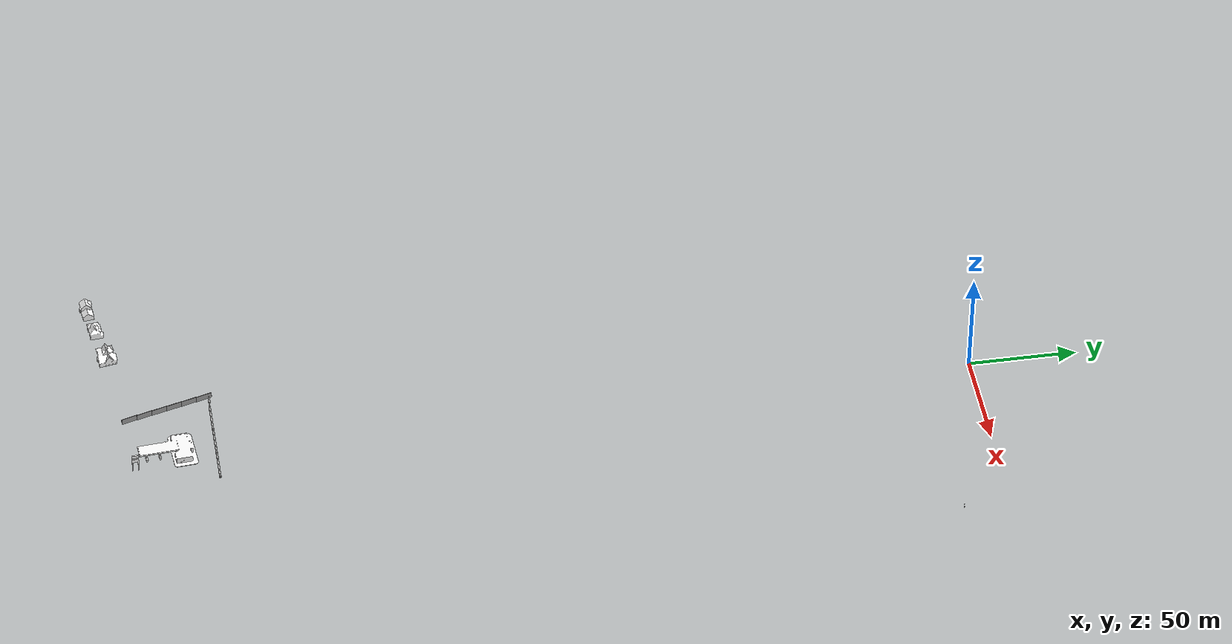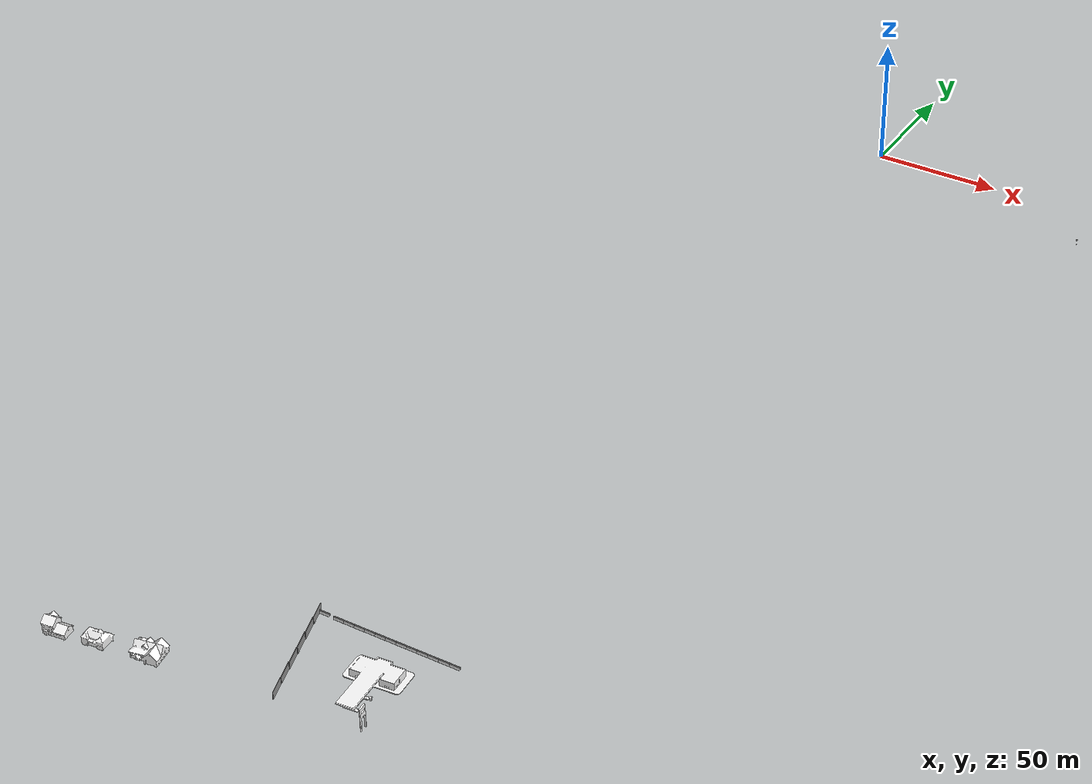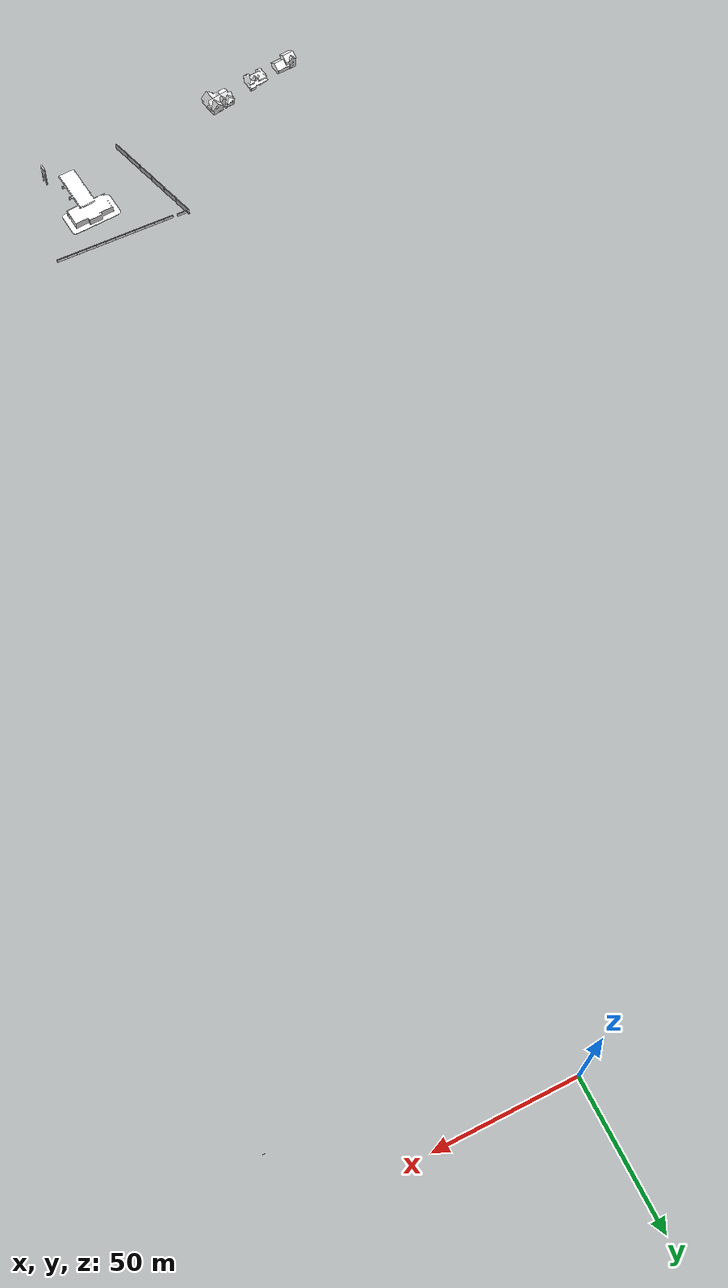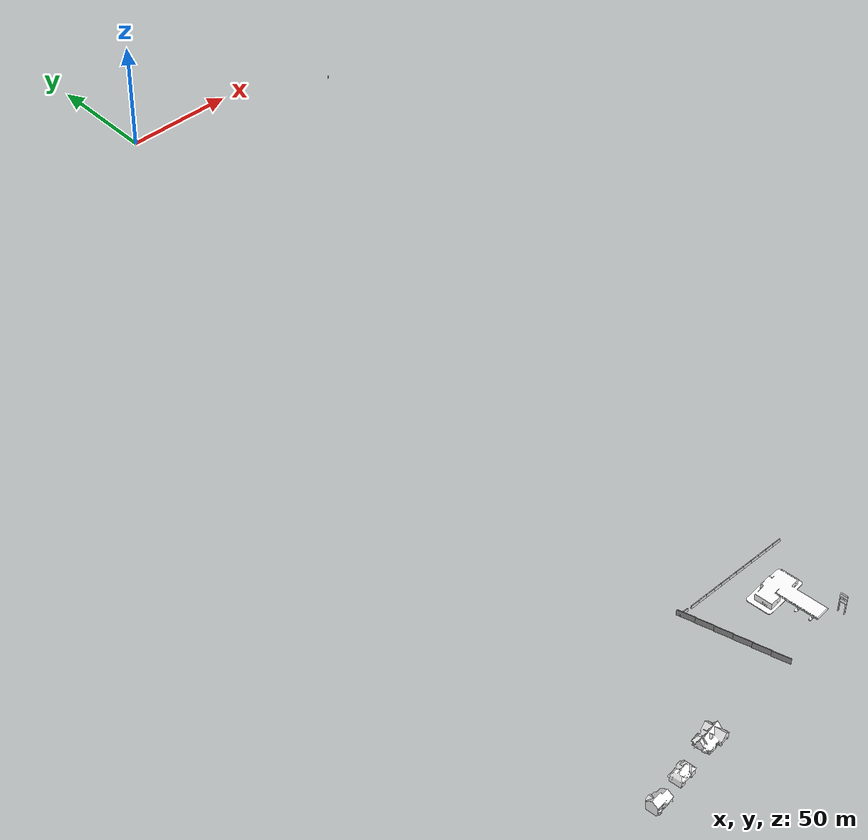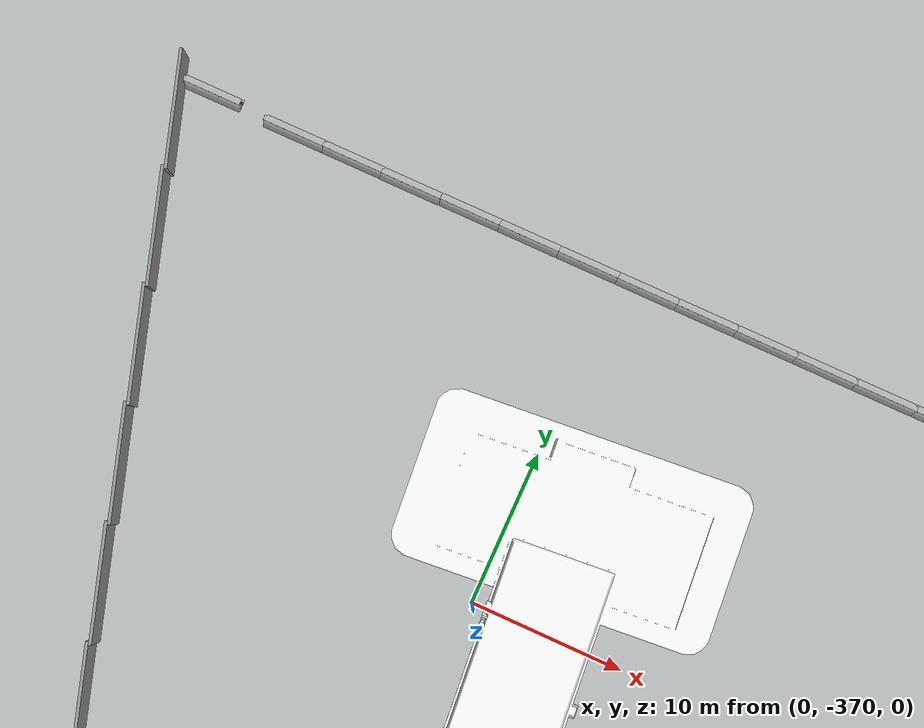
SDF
<sdf version="1.6">
 <world name="default">
  <light name="sun" type="directional">
   <pose>0 0 10 0 -0 0</pose>
   <diffuse>0.8 0.8 0.8 1</diffuse>
   <specular>0.2 0.2 0.2 1</specular>
   <attenuation>
    <range>1000</range>
    <constant>0.9</constant>
    <linear>0.01</linear>
    <quadratic>0.001</quadratic>
   </attenuation>
   <direction>-0.5 0.1 -0.9</direction>
  </light>
  <gravity>0 0 -9.8</gravity>
  <magnetic_field>6e-06 2.3e-05 -4.2e-05</magnetic_field>
  <atmosphere type="adiabatic"/>
  <physics name="default_physics" default="0" type="ode">
   <max_step_size>0.001</max_step_size>
   <real_time_factor>1</real_time_factor>
   <real_time_update_rate>1000</real_time_update_rate>
  </physics>
  <scene><ambient>0.4 0.4 0.4 1</ambient><background>0.7 0.7 0.7 1</background><shadows>1</shadows></scene>
  <audio><device>default</device></audio>
  <spherical_coordinates>
   <surface_model>EARTH_WGS84</surface_model>
   <latitude_deg>0</latitude_deg>
   <longitude_deg>0</longitude_deg>
   <elevation>0</elevation>
   <heading_deg>0</heading_deg>
  </spherical_coordinates>
  <model name="Gas Station">
   <static>1</static>
   <link name="link">
    <collision name="collision">
     <geometry><mesh><uri>model://gas_station/meshes/gas_station.dae</uri></mesh></geometry>
    </collision>
    <visual name="visual">
     <geometry><mesh><uri>model://gas_station/meshes/gas_station.dae</uri></mesh></geometry>
     <material>
      <script>
       <uri>model://gas_station/materials/scripts</uri>
       <uri>model://gas_station/materials/textures</uri>
       <name>GasStation/Diffuse</name>
      </script>
      <shader type="normal_map_object_space"><normal_map>GasStation_Normal.png</normal_map></shader>
     </material>
    </visual>
   </link>
   <pose>3.60098 -363.272 0 0 -0 0.083826</pose>
  </model>
  <model name="jersey_barrier">
   <static>1</static>
   <link name="link">
    <visual name="visual">
     <geometry><mesh><uri>model://jersey_barrier/meshes/jersey_barrier.dae</uri></mesh></geometry>
    </visual>
    <collision name="upright">
     <pose>0 0 0.5715 0 -0 0</pose>
     <geometry><box><size>4.06542 0.3063 1.143</size></box></geometry>
    </collision>
    <collision name="base">
     <pose>0 0 0.032258 0 -0 0</pose>
     <geometry><box><size>4.06542 0.8107 0.064516</size></box></geometry>
    </collision>
    <collision name="base2">
     <pose>0 0 0.1 0 -0 0</pose>
     <geometry><box><size>4.06542 0.65 0.1</size></box></geometry>
    </collision>
    <collision name="base3">
     <pose>0 0 0.2 0 -0 0</pose>
     <geometry><box><size>4.06542 0.5 0.1</size></box></geometry>
    </collision>
    <collision name="left-angle">
     <pose>0 -0.224 0.2401 0.9 -0 0</pose>
     <geometry><box><size>4.06542 0.5 0.064516</size></box></geometry>
    </collision>
    <collision name="right-angle">
     <pose>0 0.224 0.2401 -0.9 0 0</pose>
     <geometry><box><size>4.06542 0.5 0.064516</size></box></geometry>
    </collision>
   </link>
   <pose>-27.7486 -347.795 0 0 -0 0</pose>
  </model>
  <model name="jersey_barrier_clone">
   <static>1</static>
   <link name="link">
    <visual name="visual">
     <geometry><mesh><uri>model://jersey_barrier/meshes/jersey_barrier.dae</uri></mesh></geometry>
    </visual>
    <collision name="upright">
     <pose>0 0 0.5715 0 -0 0</pose>
     <geometry><box><size>4.06542 0.3063 1.143</size></box></geometry>
    </collision>
    <collision name="base">
     <pose>0 0 0.032258 0 -0 0</pose>
     <geometry><box><size>4.06542 0.8107 0.064516</size></box></geometry>
    </collision>
    <collision name="base2">
     <pose>0 0 0.1 0 -0 0</pose>
     <geometry><box><size>4.06542 0.65 0.1</size></box></geometry>
    </collision>
    <collision name="base3">
     <pose>0 0 0.2 0 -0 0</pose>
     <geometry><box><size>4.06542 0.5 0.1</size></box></geometry>
    </collision>
    <collision name="left-angle">
     <pose>0 -0.224 0.2401 0.9 -0 0</pose>
     <geometry><box><size>4.06542 0.5 0.064516</size></box></geometry>
    </collision>
    <collision name="right-angle">
     <pose>0 0.224 0.2401 -0.9 0 0</pose>
     <geometry><box><size>4.06542 0.5 0.064516</size></box></geometry>
    </collision>
   </link>
   <pose>-22 -348 0 0 -0 0</pose>
  </model>
  <model name="jersey_barrier_clone_clone">
   <static>1</static>
   <link name="link">
    <visual name="visual">
     <geometry><mesh><uri>model://jersey_barrier/meshes/jersey_barrier.dae</uri></mesh></geometry>
    </visual>
    <collision name="upright">
     <pose>0 0 0.5715 0 -0 0</pose>
     <geometry><box><size>4.06542 0.3063 1.143</size></box></geometry>
    </collision>
    <collision name="base">
     <pose>0 0 0.032258 0 -0 0</pose>
     <geometry><box><size>4.06542 0.8107 0.064516</size></box></geometry>
    </collision>
    <collision name="base2">
     <pose>0 0 0.1 0 -0 0</pose>
     <geometry><box><size>4.06542 0.65 0.1</size></box></geometry>
    </collision>
    <collision name="base3">
     <pose>0 0 0.2 0 -0 0</pose>
     <geometry><box><size>4.06542 0.5 0.1</size></box></geometry>
    </collision>
    <collision name="left-angle">
     <pose>0 -0.224 0.2401 0.9 -0 0</pose>
     <geometry><box><size>4.06542 0.5 0.064516</size></box></geometry>
    </collision>
    <collision name="right-angle">
     <pose>0 0.224 0.2401 -0.9 0 0</pose>
     <geometry><box><size>4.06542 0.5 0.064516</size></box></geometry>
    </collision>
   </link>
   <pose>-18 -348 0 0 -0 0</pose>
  </model>
  <model name="jersey_barrier_clone_clone_clone">
   <static>1</static>
   <link name="link">
    <visual name="visual">
     <geometry><mesh><uri>model://jersey_barrier/meshes/jersey_barrier.dae</uri></mesh></geometry>
    </visual>
    <collision name="upright">
     <pose>0 0 0.5715 0 -0 0</pose>
     <geometry><box><size>4.06542 0.3063 1.143</size></box></geometry>
    </collision>
    <collision name="base">
     <pose>0 0 0.032258 0 -0 0</pose>
     <geometry><box><size>4.06542 0.8107 0.064516</size></box></geometry>
    </collision>
    <collision name="base2">
     <pose>0 0 0.1 0 -0 0</pose>
     <geometry><box><size>4.06542 0.65 0.1</size></box></geometry>
    </collision>
    <collision name="base3">
     <pose>0 0 0.2 0 -0 0</pose>
     <geometry><box><size>4.06542 0.5 0.1</size></box></geometry>
    </collision>
    <collision name="left-angle">
     <pose>0 -0.224 0.2401 0.9 -0 0</pose>
     <geometry><box><size>4.06542 0.5 0.064516</size></box></geometry>
    </collision>
    <collision name="right-angle">
     <pose>0 0.224 0.2401 -0.9 0 0</pose>
     <geometry><box><size>4.06542 0.5 0.064516</size></box></geometry>
    </collision>
   </link>
   <pose>-14.0215 -348.019 0 0 -0 0</pose>
  </model>
  <model name="jersey_barrier_clone_clone_clone_clone">
   <static>1</static>
   <link name="link">
    <visual name="visual">
     <geometry><mesh><uri>model://jersey_barrier/meshes/jersey_barrier.dae</uri></mesh></geometry>
    </visual>
    <collision name="upright">
     <pose>0 0 0.5715 0 -0 0</pose>
     <geometry><box><size>4.06542 0.3063 1.143</size></box></geometry>
    </collision>
    <collision name="base">
     <pose>0 0 0.032258 0 -0 0</pose>
     <geometry><box><size>4.06542 0.8107 0.064516</size></box></geometry>
    </collision>
    <collision name="base2">
     <pose>0 0 0.1 0 -0 0</pose>
     <geometry><box><size>4.06542 0.65 0.1</size></box></geometry>
    </collision>
    <collision name="base3">
     <pose>0 0 0.2 0 -0 0</pose>
     <geometry><box><size>4.06542 0.5 0.1</size></box></geometry>
    </collision>
    <collision name="left-angle">
     <pose>0 -0.224 0.2401 0.9 -0 0</pose>
     <geometry><box><size>4.06542 0.5 0.064516</size></box></geometry>
    </collision>
    <collision name="right-angle">
     <pose>0 0.224 0.2401 -0.9 0 0</pose>
     <geometry><box><size>4.06542 0.5 0.064516</size></box></geometry>
    </collision>
   </link>
   <pose>-10 -348 0 0 -0 0</pose>
  </model>
  <model name="jersey_barrier_clone_clone_clone_clone_clone">
   <static>1</static>
   <link name="link">
    <visual name="visual">
     <geometry><mesh><uri>model://jersey_barrier/meshes/jersey_barrier.dae</uri></mesh></geometry>
    </visual>
    <collision name="upright">
     <pose>0 0 0.5715 0 -0 0</pose>
     <geometry><box><size>4.06542 0.3063 1.143</size></box></geometry>
    </collision>
    <collision name="base">
     <pose>0 0 0.032258 0 -0 0</pose>
     <geometry><box><size>4.06542 0.8107 0.064516</size></box></geometry>
    </collision>
    <collision name="base2">
     <pose>0 0 0.1 0 -0 0</pose>
     <geometry><box><size>4.06542 0.65 0.1</size></box></geometry>
    </collision>
    <collision name="base3">
     <pose>0 0 0.2 0 -0 0</pose>
     <geometry><box><size>4.06542 0.5 0.1</size></box></geometry>
    </collision>
    <collision name="left-angle">
     <pose>0 -0.224 0.2401 0.9 -0 0</pose>
     <geometry><box><size>4.06542 0.5 0.064516</size></box></geometry>
    </collision>
    <collision name="right-angle">
     <pose>0 0.224 0.2401 -0.9 0 0</pose>
     <geometry><box><size>4.06542 0.5 0.064516</size></box></geometry>
    </collision>
   </link>
   <pose>-6 -348 0 0 -0 0</pose>
  </model>
  <model name="jersey_barrier_clone_clone_clone_clone_clone_clone">
   <static>1</static>
   <link name="link">
    <visual name="visual">
     <geometry><mesh><uri>model://jersey_barrier/meshes/jersey_barrier.dae</uri></mesh></geometry>
    </visual>
    <collision name="upright">
     <pose>0 0 0.5715 0 -0 0</pose>
     <geometry><box><size>4.06542 0.3063 1.143</size></box></geometry>
    </collision>
    <collision name="base">
     <pose>0 0 0.032258 0 -0 0</pose>
     <geometry><box><size>4.06542 0.8107 0.064516</size></box></geometry>
    </collision>
    <collision name="base2">
     <pose>0 0 0.1 0 -0 0</pose>
     <geometry><box><size>4.06542 0.65 0.1</size></box></geometry>
    </collision>
    <collision name="base3">
     <pose>0 0 0.2 0 -0 0</pose>
     <geometry><box><size>4.06542 0.5 0.1</size></box></geometry>
    </collision>
    <collision name="left-angle">
     <pose>0 -0.224 0.2401 0.9 -0 0</pose>
     <geometry><box><size>4.06542 0.5 0.064516</size></box></geometry>
    </collision>
    <collision name="right-angle">
     <pose>0 0.224 0.2401 -0.9 0 0</pose>
     <geometry><box><size>4.06542 0.5 0.064516</size></box></geometry>
    </collision>
   </link>
   <pose>-2 -348 0 0 -0 0</pose>
  </model>
  <model name="jersey_barrier_clone_clone_clone_clone_clone_clone_clone">
   <static>1</static>
   <link name="link">
    <visual name="visual">
     <geometry><mesh><uri>model://jersey_barrier/meshes/jersey_barrier.dae</uri></mesh></geometry>
    </visual>
    <collision name="upright">
     <pose>0 0 0.5715 0 -0 0</pose>
     <geometry><box><size>4.06542 0.3063 1.143</size></box></geometry>
    </collision>
    <collision name="base">
     <pose>0 0 0.032258 0 -0 0</pose>
     <geometry><box><size>4.06542 0.8107 0.064516</size></box></geometry>
    </collision>
    <collision name="base2">
     <pose>0 0 0.1 0 -0 0</pose>
     <geometry><box><size>4.06542 0.65 0.1</size></box></geometry>
    </collision>
    <collision name="base3">
     <pose>0 0 0.2 0 -0 0</pose>
     <geometry><box><size>4.06542 0.5 0.1</size></box></geometry>
    </collision>
    <collision name="left-angle">
     <pose>0 -0.224 0.2401 0.9 -0 0</pose>
     <geometry><box><size>4.06542 0.5 0.064516</size></box></geometry>
    </collision>
    <collision name="right-angle">
     <pose>0 0.224 0.2401 -0.9 0 0</pose>
     <geometry><box><size>4.06542 0.5 0.064516</size></box></geometry>
    </collision>
   </link>
   <pose>6 -348 0 0 -0 0</pose>
  </model>
  <model name="jersey_barrier_clone_clone_clone_clone_clone_clone_clone_clone">
   <static>1</static>
   <link name="link">
    <visual name="visual">
     <geometry><mesh><uri>model://jersey_barrier/meshes/jersey_barrier.dae</uri></mesh></geometry>
    </visual>
    <collision name="upright">
     <pose>0 0 0.5715 0 -0 0</pose>
     <geometry><box><size>4.06542 0.3063 1.143</size></box></geometry>
    </collision>
    <collision name="base">
     <pose>0 0 0.032258 0 -0 0</pose>
     <geometry><box><size>4.06542 0.8107 0.064516</size></box></geometry>
    </collision>
    <collision name="base2">
     <pose>0 0 0.1 0 -0 0</pose>
     <geometry><box><size>4.06542 0.65 0.1</size></box></geometry>
    </collision>
    <collision name="base3">
     <pose>0 0 0.2 0 -0 0</pose>
     <geometry><box><size>4.06542 0.5 0.1</size></box></geometry>
    </collision>
    <collision name="left-angle">
     <pose>0 -0.224 0.2401 0.9 -0 0</pose>
     <geometry><box><size>4.06542 0.5 0.064516</size></box></geometry>
    </collision>
    <collision name="right-angle">
     <pose>0 0.224 0.2401 -0.9 0 0</pose>
     <geometry><box><size>4.06542 0.5 0.064516</size></box></geometry>
    </collision>
   </link>
   <pose>2 -348 0 0 -0 0</pose>
  </model>
  <model name="jersey_barrier_clone_clone_clone_clone_clone_clone_clone_clone_0">
   <static>1</static>
   <link name="link">
    <visual name="visual">
     <geometry><mesh><uri>model://jersey_barrier/meshes/jersey_barrier.dae</uri></mesh></geometry>
    </visual>
    <collision name="upright">
     <pose>0 0 0.5715 0 -0 0</pose>
     <geometry><box><size>4.06542 0.3063 1.143</size></box></geometry>
    </collision>
    <collision name="base">
     <pose>0 0 0.032258 0 -0 0</pose>
     <geometry><box><size>4.06542 0.8107 0.064516</size></box></geometry>
    </collision>
    <collision name="base2">
     <pose>0 0 0.1 0 -0 0</pose>
     <geometry><box><size>4.06542 0.65 0.1</size></box></geometry>
    </collision>
    <collision name="base3">
     <pose>0 0 0.2 0 -0 0</pose>
     <geometry><box><size>4.06542 0.5 0.1</size></box></geometry>
    </collision>
    <collision name="left-angle">
     <pose>0 -0.224 0.2401 0.9 -0 0</pose>
     <geometry><box><size>4.06542 0.5 0.064516</size></box></geometry>
    </collision>
    <collision name="right-angle">
     <pose>0 0.224 0.2401 -0.9 0 0</pose>
     <geometry><box><size>4.06542 0.5 0.064516</size></box></geometry>
    </collision>
   </link>
   <pose>10 -348 0 0 -0 0</pose>
  </model>
  <model name="jersey_barrier_clone_clone_clone_clone_clone_clone_clone_clone_0_clone">
   <static>1</static>
   <link name="link">
    <visual name="visual">
     <geometry><mesh><uri>model://jersey_barrier/meshes/jersey_barrier.dae</uri></mesh></geometry>
    </visual>
    <collision name="upright">
     <pose>0 0 0.5715 0 -0 0</pose>
     <geometry><box><size>4.06542 0.3063 1.143</size></box></geometry>
    </collision>
    <collision name="base">
     <pose>0 0 0.032258 0 -0 0</pose>
     <geometry><box><size>4.06542 0.8107 0.064516</size></box></geometry>
    </collision>
    <collision name="base2">
     <pose>0 0 0.1 0 -0 0</pose>
     <geometry><box><size>4.06542 0.65 0.1</size></box></geometry>
    </collision>
    <collision name="base3">
     <pose>0 0 0.2 0 -0 0</pose>
     <geometry><box><size>4.06542 0.5 0.1</size></box></geometry>
    </collision>
    <collision name="left-angle">
     <pose>0 -0.224 0.2401 0.9 -0 0</pose>
     <geometry><box><size>4.06542 0.5 0.064516</size></box></geometry>
    </collision>
    <collision name="right-angle">
     <pose>0 0.224 0.2401 -0.9 0 0</pose>
     <geometry><box><size>4.06542 0.5 0.064516</size></box></geometry>
    </collision>
   </link>
   <pose>14 -348 0 0 -0 0</pose>
  </model>
  <model name="jersey_barrier_clone_clone_clone_clone_clone_clone_clone_clone_0_clone_clone">
   <static>1</static>
   <link name="link">
    <visual name="visual">
     <geometry><mesh><uri>model://jersey_barrier/meshes/jersey_barrier.dae</uri></mesh></geometry>
    </visual>
    <collision name="upright">
     <pose>0 0 0.5715 0 -0 0</pose>
     <geometry><box><size>4.06542 0.3063 1.143</size></box></geometry>
    </collision>
    <collision name="base">
     <pose>0 0 0.032258 0 -0 0</pose>
     <geometry><box><size>4.06542 0.8107 0.064516</size></box></geometry>
    </collision>
    <collision name="base2">
     <pose>0 0 0.1 0 -0 0</pose>
     <geometry><box><size>4.06542 0.65 0.1</size></box></geometry>
    </collision>
    <collision name="base3">
     <pose>0 0 0.2 0 -0 0</pose>
     <geometry><box><size>4.06542 0.5 0.1</size></box></geometry>
    </collision>
    <collision name="left-angle">
     <pose>0 -0.224 0.2401 0.9 -0 0</pose>
     <geometry><box><size>4.06542 0.5 0.064516</size></box></geometry>
    </collision>
    <collision name="right-angle">
     <pose>0 0.224 0.2401 -0.9 0 0</pose>
     <geometry><box><size>4.06542 0.5 0.064516</size></box></geometry>
    </collision>
   </link>
   <pose>18 -348 0 0 -0 0</pose>
  </model>
  <model name="jersey_barrier_clone_clone_clone_clone_clone_clone_clone_clone_0_clone_clone_clone">
   <static>1</static>
   <link name="link">
    <visual name="visual">
     <geometry><mesh><uri>model://jersey_barrier/meshes/jersey_barrier.dae</uri></mesh></geometry>
    </visual>
    <collision name="upright">
     <pose>0 0 0.5715 0 -0 0</pose>
     <geometry><box><size>4.06542 0.3063 1.143</size></box></geometry>
    </collision>
    <collision name="base">
     <pose>0 0 0.032258 0 -0 0</pose>
     <geometry><box><size>4.06542 0.8107 0.064516</size></box></geometry>
    </collision>
    <collision name="base2">
     <pose>0 0 0.1 0 -0 0</pose>
     <geometry><box><size>4.06542 0.65 0.1</size></box></geometry>
    </collision>
    <collision name="base3">
     <pose>0 0 0.2 0 -0 0</pose>
     <geometry><box><size>4.06542 0.5 0.1</size></box></geometry>
    </collision>
    <collision name="left-angle">
     <pose>0 -0.224 0.2401 0.9 -0 0</pose>
     <geometry><box><size>4.06542 0.5 0.064516</size></box></geometry>
    </collision>
    <collision name="right-angle">
     <pose>0 0.224 0.2401 -0.9 0 0</pose>
     <geometry><box><size>4.06542 0.5 0.064516</size></box></geometry>
    </collision>
   </link>
   <pose>22 -348 0 0 -0 0</pose>
  </model>
  <model name="grey_wall">
   <static>1</static>
   <link name="link">
    <pose>0 0 1.4 0 -0 0</pose>
    <collision name="collision"><geometry><box><size>7.5 0.2 2.8</size></box></geometry></collision>
    <visual name="visual">
     <cast_shadows>0</cast_shadows>
     <geometry><box><size>7.5 0.2 2.8</size></box></geometry>
     <material>
      <script>
       <uri>model://grey_wall/materials/scripts</uri>
       <uri>model://grey_wall/materials/textures</uri>
       <name>vrc/grey_wall</name>
      </script>
     </material>
    </visual>
   </link>
   <pose>-29 -350 0 0 -0 1.87601</pose>
  </model>
  <model name="grey_wall_clone">
   <static>1</static>
   <link name="link">
    <pose>0 0 1.4 0 -0 0</pose>
    <collision name="collision"><geometry><box><size>7.5 0.2 2.8</size></box></geometry></collision>
    <visual name="visual">
     <cast_shadows>0</cast_shadows>
     <geometry><box><size>7.5 0.2 2.8</size></box></geometry>
     <material>
      <script>
       <uri>model://grey_wall/materials/scripts</uri>
       <uri>model://grey_wall/materials/textures</uri>
       <name>vrc/grey_wall</name>
      </script>
     </material>
    </visual>
   </link>
   <pose>-27 -357 0 0 -0 1.87601</pose>
  </model>
  <model name="grey_wall_clone_0">
   <static>1</static>
   <link name="link">
    <pose>0 0 1.4 0 -0 0</pose>
    <collision name="collision"><geometry><box><size>7.5 0.2 2.8</size></box></geometry></collision>
    <visual name="visual">
     <cast_shadows>0</cast_shadows>
     <geometry><box><size>7.5 0.2 2.8</size></box></geometry>
     <material>
      <script>
       <uri>model://grey_wall/materials/scripts</uri>
       <uri>model://grey_wall/materials/textures</uri>
       <name>vrc/grey_wall</name>
      </script>
     </material>
    </visual>
   </link>
   <pose>-25 -364 0 0 -0 1.87601</pose>
  </model>
  <model name="grey_wall_clone_0_clone">
   <static>1</static>
   <link name="link">
    <pose>0 0 1.4 0 -0 0</pose>
    <collision name="collision"><geometry><box><size>7.5 0.2 2.8</size></box></geometry></collision>
    <visual name="visual">
     <cast_shadows>0</cast_shadows>
     <geometry><box><size>7.5 0.2 2.8</size></box></geometry>
     <material>
      <script>
       <uri>model://grey_wall/materials/scripts</uri>
       <uri>model://grey_wall/materials/textures</uri>
       <name>vrc/grey_wall</name>
      </script>
     </material>
    </visual>
   </link>
   <pose>-23 -371 0 0 -0 1.87601</pose>
  </model>
  <model name="grey_wall_clone_0_clone_clone">
   <static>1</static>
   <link name="link">
    <pose>0 0 1.4 0 -0 0</pose>
    <collision name="collision"><geometry><box><size>7.5 0.2 2.8</size></box></geometry></collision>
    <visual name="visual">
     <cast_shadows>0</cast_shadows>
     <geometry><box><size>7.5 0.2 2.8</size></box></geometry>
     <material>
      <script>
       <uri>model://grey_wall/materials/scripts</uri>
       <uri>model://grey_wall/materials/textures</uri>
       <name>vrc/grey_wall</name>
      </script>
     </material>
    </visual>
   </link>
   <pose>-21 -378 0 0 -0 1.87601</pose>
  </model>
  <model name="grey_wall_clone_0_clone_clone_clone">
   <static>1</static>
   <link name="link">
    <pose>0 0 1.4 0 -0 0</pose>
    <collision name="collision"><geometry><box><size>7.5 0.2 2.8</size></box></geometry></collision>
    <visual name="visual">
     <cast_shadows>0</cast_shadows>
     <geometry><box><size>7.5 0.2 2.8</size></box></geometry>
     <material>
      <script>
       <uri>model://grey_wall/materials/scripts</uri>
       <uri>model://grey_wall/materials/textures</uri>
       <name>vrc/grey_wall</name>
      </script>
     </material>
    </visual>
   </link>
   <pose>-19 -385 0 0 -0 1.87601</pose>
  </model>
  <model name="House 1">
   <static>1</static>
   <link name="link">
    <collision name="collision">
     <geometry><mesh><uri>model://house_1/meshes/house_1.dae</uri></mesh></geometry>
    </collision>
    <visual name="visual">
     <geometry><mesh><uri>model://house_1/meshes/house_1.dae</uri></mesh></geometry>
     <material>
      <script>
       <uri>model://house_1/materials/scripts</uri>
       <uri>model://house_1/materials/textures</uri>
       <name>House_1/Diffuse</name>
      </script>
      <shader type="normal_map_object_space"><normal_map>House_1_Normal.png</normal_map></shader>
     </material>
    </visual>
   </link>
   <pose>-63.4144 -391.538 0 0 -0 0.178783</pose>
  </model>
  <model name="House 2">
   <static>1</static>
   <link name="link">
    <collision name="collision">
     <geometry><mesh><uri>model://house_2/meshes/house_2.dae</uri></mesh></geometry>
    </collision>
    <visual name="visual">
     <geometry><mesh><uri>model://house_2/meshes/house_2.dae</uri></mesh></geometry>
     <material>
      <script>
       <uri>model://house_2/materials/scripts</uri>
       <uri>model://house_2/materials/textures</uri>
       <uri>model://house_1/materials/textures</uri>
       <name>House_2/Diffuse</name>
      </script>
      <shader type="normal_map_object_space">
       <normal_map>model://house_1/materials/textures/House_1_Normal.png</normal_map>
      </shader>
     </material>
    </visual>
   </link>
   <pose>-82.0852 -395.523 0 0 -0 0.112755</pose>
  </model>
  <model name="House 3">
   <static>1</static>
   <link name="link">
    <collision name="collision">
     <geometry><mesh><uri>model://house_3/meshes/house_3.dae</uri></mesh></geometry>
    </collision>
    <visual name="visual">
     <geometry><mesh><uri>model://house_3/meshes/house_3.dae</uri></mesh></geometry>
     <material>
      <script>
       <uri>model://house_3/materials/scripts</uri>
       <uri>model://house_3/materials/textures</uri>
       <uri>model://house_1/materials/textures</uri>
       <name>House_3/Diffuse</name>
      </script>
      <shader type="normal_map_object_space">
       <normal_map>model://house_1/materials/textures/House_1_Normal.png</normal_map>
      </shader>
     </material>
    </visual>
   </link>
   <pose>-94.9389 -397.723 0 0 -0 0.112475</pose>
  </model>
  <model name="Speed limit">
   <static>1</static>
   <link name="link">
    <collision name="collision">
     <geometry>
      <mesh><scale>10 10 10</scale><uri>model://speed_limit_sign/meshes/speed_limit_sign.dae</uri></mesh>
     </geometry>
    </collision>
    <visual name="visual">
     <geometry>
      <mesh><scale>10 10 10</scale><uri>model://speed_limit_sign/meshes/speed_limit_sign.dae</uri></mesh>
     </geometry>
    </visual>
   </link>
   <pose>93.9624 -21.3385 0 0 -0 0</pose>
  </model>
 </world>
</sdf>
